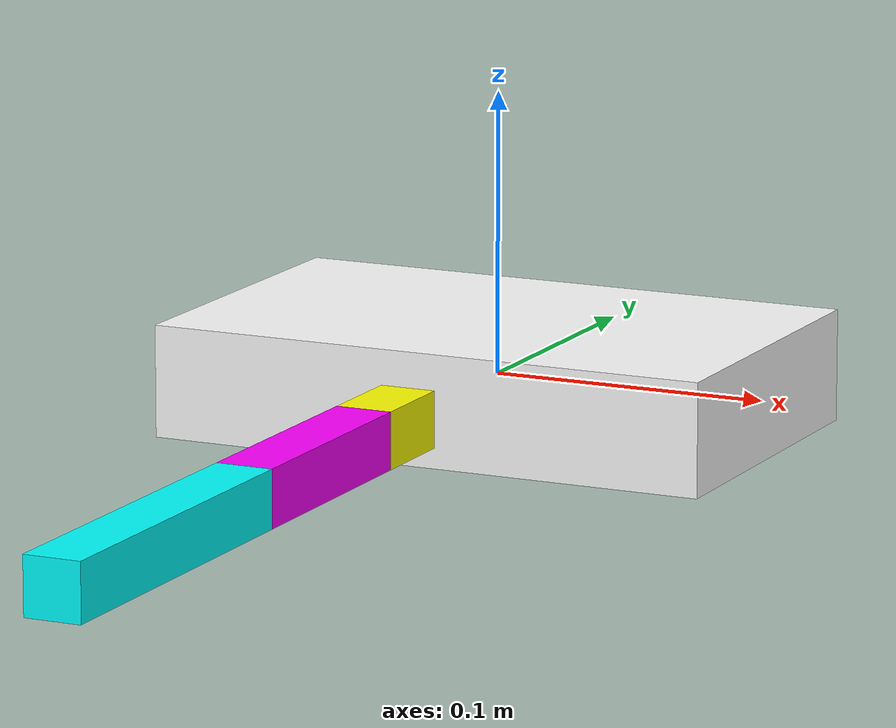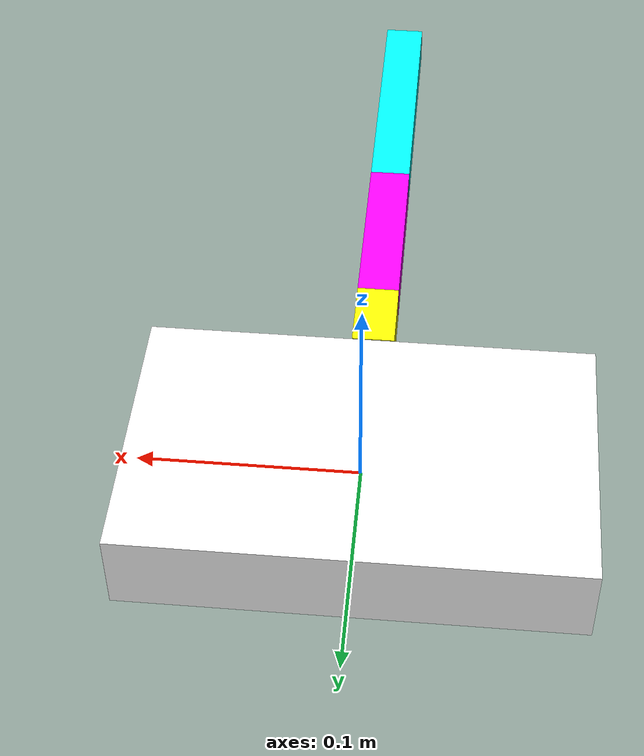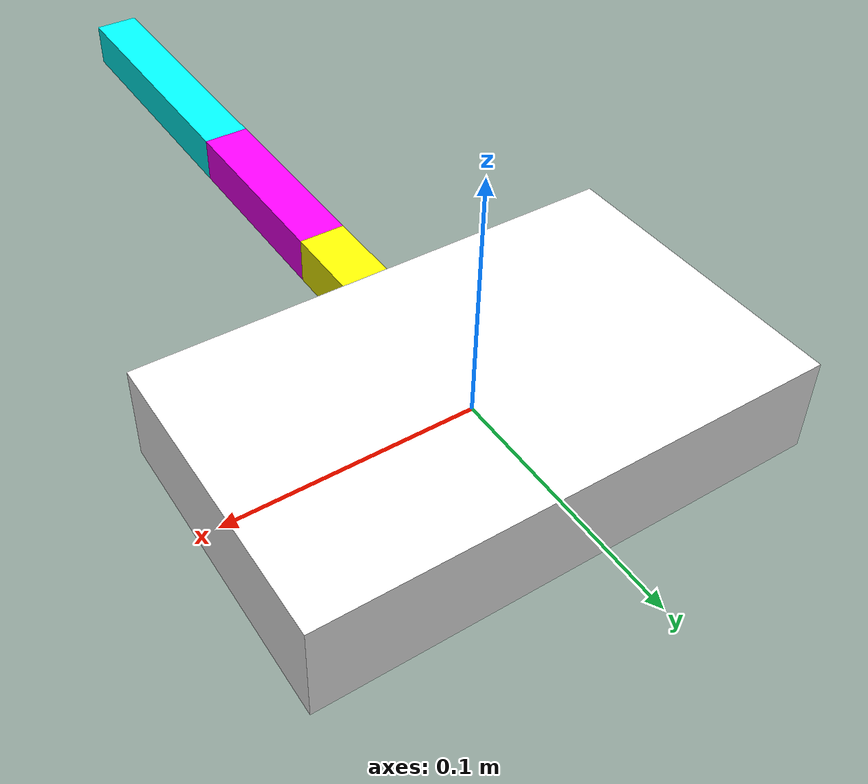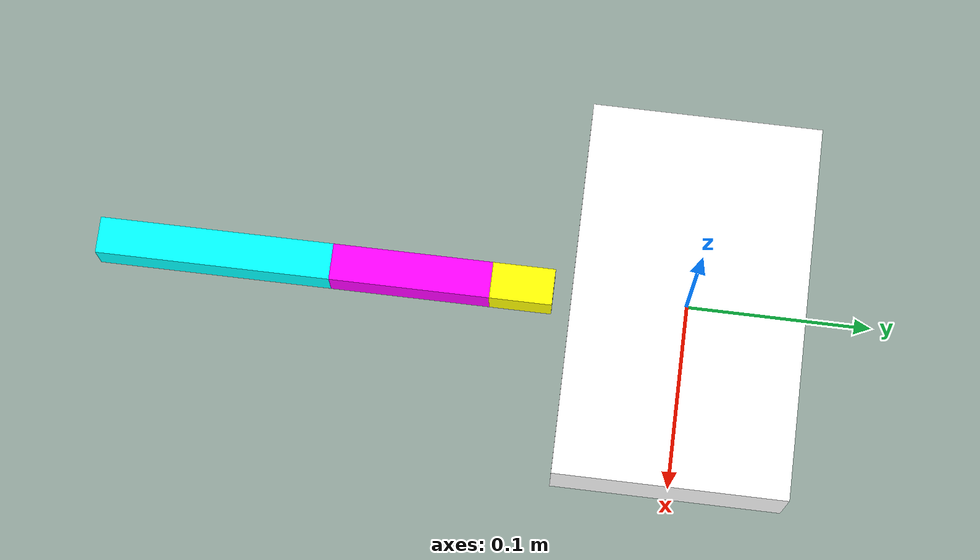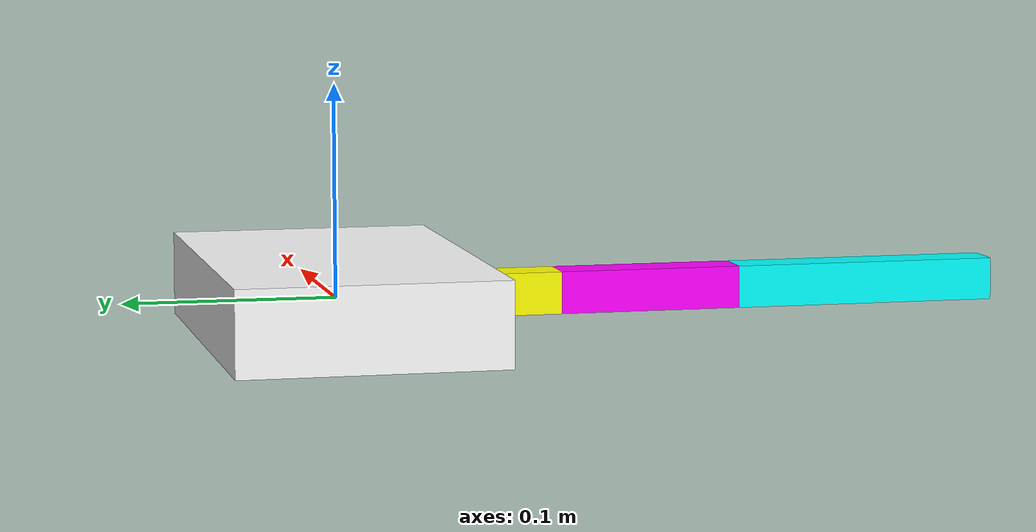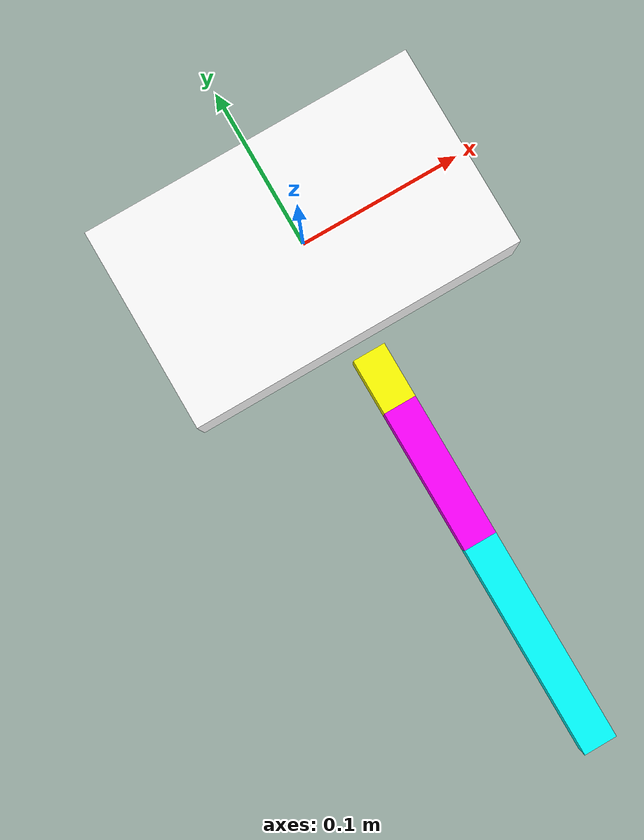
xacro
<?xml version="1.0"?>

<robot xmlns:xacro="http://www.ros.org/wiki/xacro" name="hexapod_leg">

  <xacro:property name="body_width_s" value="0.125"/>
  <xacro:property name="body_width_b" value="0.145"/>
  <xacro:property name="body_length" value="0.205"/>
  <xacro:property name="body_heigth" value="0.04"/>
  <xacro:property name="L1_length" value="0.034"/>
  <xacro:property name="L2_length" value="0.087"/>
  <xacro:property name="L3_length" value="0.1273"/>
  <xacro:property name="L1_length" value="0.034"/>
  <xacro:property name="L_width" value="0.02"/>

  <xacro:property name="body_mass" value="0.3"/>
  <xacro:property name="L1_mass" value="0.158"/>
  <xacro:property name="L2_mass" value="0.034"/>
  <xacro:property name="L3_mass" value="0.102"/>

  <xacro:property name="max_angle" value="150"/>

  <xacro:macro name="default_inertial" params="mass">
    <inertial>
      <mass value="${mass}" />
      <inertia ixx="1.0" ixy="0.0" ixz="0.0"
        iyy="1.0" iyz="0.0"
        izz="1.0" />
      </inertial>
    </xacro:macro>

    <link name="base_link" />

    <joint name="base_joint" type="fixed">
      <parent link="base_link" />
      <child link="body" />
      <origin xyz="0 0 0" rpy="0 0 0" />
    </joint>

    <link name="body">
      <visual>
        <geometry>
          <box size="${body_length} ${body_width_s} ${body_heigth}"/>
        </geometry>
        <origin rpy="0 0 0" xyz="0 0 0"/>
        <material name="white">
          <color rgba="1 1 1 1"/>
        </material>
      </visual>
      <collision>
        <geometry>
          <box size="${body_length} ${body_width_s} ${body_heigth}"/>
        </geometry>
      </collision>
      <xacro:default_inertial mass="${body_mass}"/>
    </link>

    <link name="leg_center_1" />

    <joint name="leg_center_joint" type="fixed">
      <parent link="body"/>
      <child link="leg_center_1"/>
      <origin rpy="0 0 -1.57" xyz="0 ${-body_width_b/2} 0"/>
    </joint>

    <link name="leg_L1">
      <visual>
        <geometry>
          <box size="${L1_length} ${L_width} ${L_width}"/>
        </geometry>
        <origin rpy="0 0 0" xyz="${L1_length/2} 0 0"/>
        <material name="yellow">
          <color rgba="255 255 0 1"/>
        </material>
      </visual>
      <collision>
        <geometry>
          <box size="${L1_length} ${L_width} ${L_width}"/>
        </geometry>
      </collision>
      <xacro:default_inertial mass="${L1_mass}"/>
    </link>

    <joint name="coxa_joint" type="revolute">
      <parent link="leg_center_1"/>
      <child link="leg_L1"/>
      <axis xyz="0 0 1"/>
      <origin rpy="0 0 0" xyz="0 0 0"/>
      <limit effort ="1000.0" lower="${radians(-max_angle)}" upper="${radians(max_angle)}" velocity="0.5"/>
    </joint>

    <link name="leg_L2">
      <visual>
        <geometry>
          <box size="${L2_length} ${L_width} ${L_width}"/>
        </geometry>
        <origin rpy="0 0 0" xyz="${L2_length/2} 0 0"/>
        <material name="green">
          <color rgba="255 0 255 1"/>
        </material>
      </visual>
      <collision>
        <geometry>
          <box size="${L2_length} ${L_width} ${L_width}"/>
        </geometry>
      </collision>
      <xacro:default_inertial mass="${L2_mass}"/>
    </link>

    <joint name="femur_joint" type="revolute">
      <parent link="leg_L1"/>
      <child link="leg_L2"/>
      <origin rpy="1.57 0 0" xyz="${L1_length} 0 0"/>
      <axis xyz="0 0 1"/>
      <limit effort ="1000.0" lower="${radians(-max_angle)}" upper="${radians(max_angle)}" velocity="0.5"/>
    </joint>

    <link name="leg_L3">
      <visual>
        <geometry>
          <box size="${L3_length} ${L_width} ${L_width}"/>
        </geometry>
        <origin rpy="0 0 0" xyz="${L3_length/2} 0 0"/>
        <material name="blue">
          <color rgba="0 255 255 1"/>
        </material>
      </visual>
      <collision>
        <geometry>
          <box size="${L3_length} ${L_width} ${L_width}"/>
        </geometry>
      </collision>
      <xacro:default_inertial mass="${L3_mass}"/>
    </link>

    <joint name="tibia_joint" type="revolute">
      <parent link="leg_L2"/>
      <child link="leg_L3"/>
      <origin rpy="0 0 0" xyz="${L2_length} 0 0"/>
      <axis xyz="0 0 -1"/>
      <limit effort ="1000.0" lower="${radians(-max_angle)}" upper="${radians(max_angle)}" velocity="0.5"/>
    </joint>

    <link name="end_effector"/>

     <joint name="end effector_joint" type="fixed">
      <parent link="leg_L3"/>
      <child link="end_effector"/>
      <origin rpy="0 0 0" xyz="${L3_length} 0 0"/>
    </joint>

  </robot>
